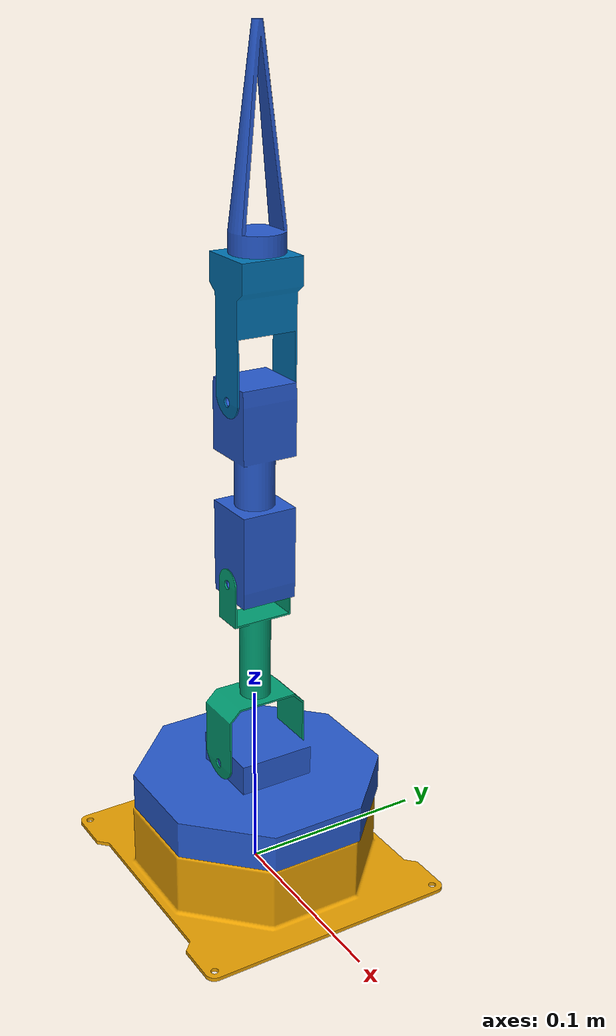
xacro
<?xml version="1.0"?>
<robot xmlns:xacro="http://www.ros.org/wiki/xacro" name="five_dof_arm">

  <!-- Dimensions are illustrative, in metres. -->
  <xacro:property name="base_height" value="0.08"/>
  <xacro:property name="link1_length" value="0.12"/>
  <xacro:property name="link2_length" value="0.15"/>
  <xacro:property name="link3_length" value="0.12"/>
  <xacro:property name="link_radius" value="0.025"/>

  <!-- Base 1: fixed base -->
  <link name="base_link">
    <visual>
      <origin xyz="-0.077 -0.070 0" rpy="0 0 0"/>
      <geometry>
        <mesh filename="package://five_dof_arm/meshes/Base1.STL"
              scale="0.001 0.001 0.001"/>
      </geometry>
    </visual>
  </link>

  <!-- Joint 1: rotating base -->
  <link name="base2_link">
    <visual>
      <origin xyz="-0.06 -0.06 0.0" rpy="0 0 0"/>
      <geometry>
        <mesh filename="package://five_dof_arm/meshes/Base2.STL"
              scale="0.001 0.001 0.001"/>
      </geometry>
      <material name="base2_blue">
        <color rgba="0.15 0.35 0.8 1.0"/>
      </material>
    </visual>
  </link>
  <joint name="joint1" type="revolute">
    <parent link="base_link"/>
    <child link="base2_link"/>
    <origin xyz="0 0 0.037" rpy="0 0 0"/>
    <axis xyz="0 0 1"/>
    <limit lower="-3.14159" upper="3.14159"
          effort="10" velocity="1.0"/>
  </joint>

  <!-- Joint 2: first arm -->
  <link name="link1">
    <visual>
      <origin xyz="-0.013 -0.022 -0.008" rpy="0 0 0"/>
      <geometry>
        <mesh filename="package://five_dof_arm/meshes/Link1.STL"
              scale="0.001 0.001 0.001"/>
      </geometry>
    </visual>
  </link>
  <joint name="joint2" type="revolute">
    <parent link="base2_link"/>
    <child link="link1"/>
    <origin xyz="0 0 0.028" rpy="0 0 0"/>
    <axis xyz="0 1 0"/>
    <limit lower="-1.5708" upper="1.5708"
          effort="10" velocity="1.0"/>
  </joint>

  <!-- Joint 3: second arm -->
  <link name="link2">
    <visual>
      <origin xyz="-0.0148 -0.0145 -0.008" rpy="0 0 0"/>
      <geometry>
        <mesh filename="package://five_dof_arm/meshes/Link2.STL"
              scale="0.001 0.001 0.001"/>
      </geometry>
      <material name="base2_blue">
        <color rgba="0.15 0.35 0.8 1.0"/>
      </material>
    </visual>
  </link>
  <joint name="joint3" type="revolute">
    <parent link="link1"/>
    <child link="link2"/>
    <origin xyz="0 0 0.101" rpy="0 0 0"/>
    <axis xyz="0 1 0"/>
    <limit lower="-2.0" upper="2.0"
          effort="8" velocity="1.0"/>
  </joint>

  <!-- Joint 4: second arm -->
  <link name="link3">
    <visual>
      <origin xyz="-0.014 -0.016 -0.008" rpy="0 0 0"/>
      <geometry>
        <mesh filename="package://five_dof_arm/meshes/Link3.STL"
              scale="0.001 0.001 0.001"/>
      </geometry>
    </visual>
  </link>
  <joint name="joint4" type="revolute">
    <parent link="link2"/>
    <child link="link3"/>
    <origin xyz="0 0 0.095" rpy="0 0 0"/>
    <axis xyz="0 1 0"/>
    <limit lower="-2.0" upper="2.0"
          effort="8" velocity="1.0"/>
  </joint>

  <!-- Joint 5: Gripper connects here -->
  <link name="link4">
    <visual>
      <origin xyz="-0.0135 -0.0135 0" rpy="0 0 0"/>
      <geometry>
        <mesh filename="package://five_dof_arm/meshes/Link4.STL"
              scale="0.001 0.001 0.001"/>
      </geometry>
      <material name="base2_blue">
        <color rgba="0.15 0.35 0.8 1.0"/>
      </material>
    </visual>
  </link>
  <joint name="joint5" type="revolute">
    <parent link="link3"/>
    <child link="link4"/>
    <origin xyz="0 0 0.068" rpy="0 0 0"/>
    <axis xyz="0 0 1"/>
    <limit lower="-3.14159" upper="3.14159"
          effort="10" velocity="1.0"/>
  </joint>

</robot>
